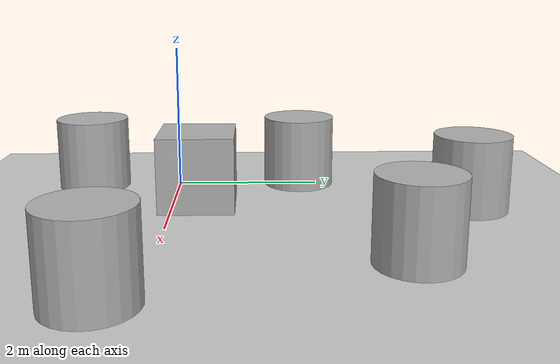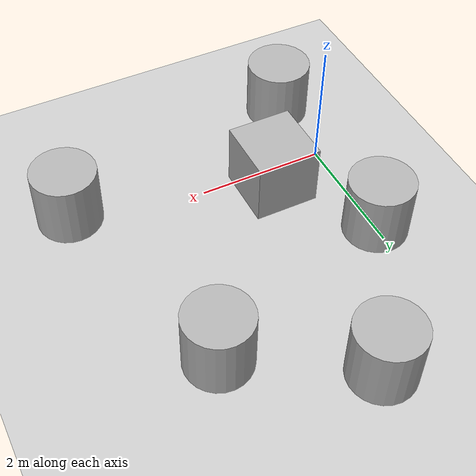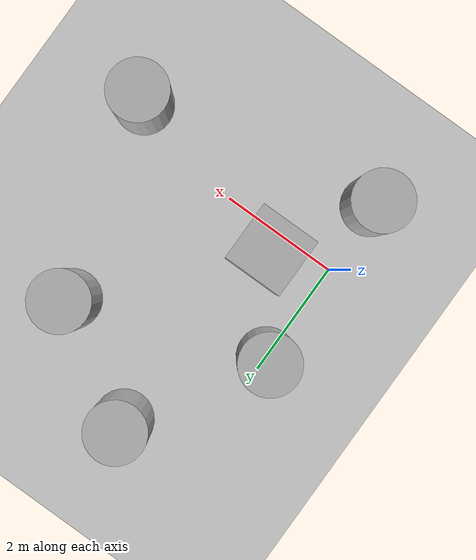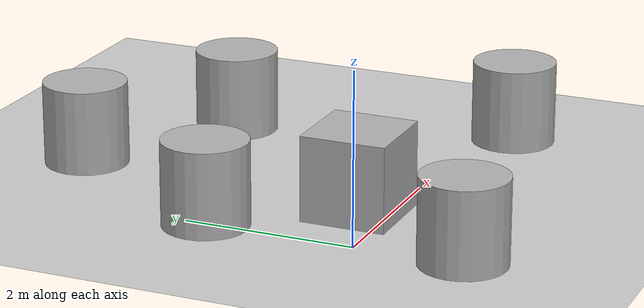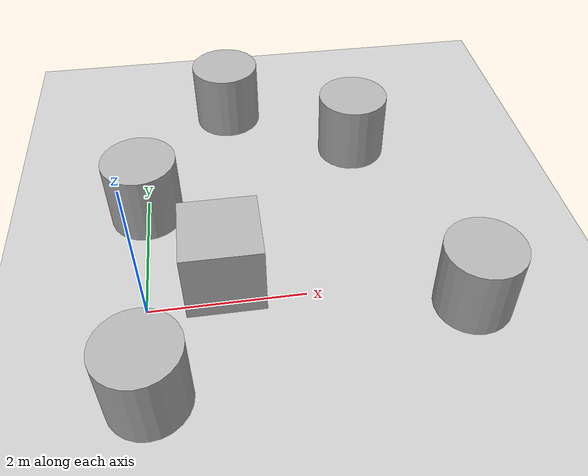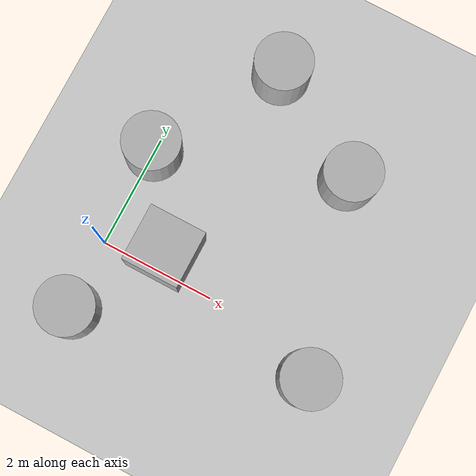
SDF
<sdf version='1.10'>
  <world name='empty'>
    <physics name='1ms' type='ignored'>
      <max_step_size>0.001</max_step_size>
      <real_time_factor>1</real_time_factor>
      <real_time_update_rate>1000</real_time_update_rate>
    </physics>
    <plugin name='gz::sim::systems::Physics' filename='gz-sim-physics-system'/>
    <plugin name='gz::sim::systems::UserCommands' filename='gz-sim-user-commands-system'/>
    <plugin name='gz::sim::systems::SceneBroadcaster' filename='gz-sim-scene-broadcaster-system'/>
    <plugin name='gz::sim::systems::Sensors' filename='gz-sim-sensors-system'>
      <render_engine>ogre2</render_engine>
    </plugin>
    <plugin name='gz::sim::systems::Contact' filename='gz-sim-contact-system'/>
    <gravity>0 0 -9.8000000000000007</gravity>
    <magnetic_field>5.5644999999999998e-06 2.2875799999999999e-05 -4.2388400000000002e-05</magnetic_field>
    <atmosphere type='adiabatic'/>
    <scene>
      <ambient>0.400000006 0.400000006 0.400000006 1</ambient>
      <background>0.699999988 0.699999988 0.699999988 1</background>
      <shadows>true</shadows>
    </scene>
    <model name='ground_plane'>
      <static>true</static>
      <link name='link'>
        <collision name='collision'>
          <geometry>
            <plane>
              <normal>0 0 1</normal>
              <size>100 100</size>
            </plane>
          </geometry>
          <surface>
            <friction>
              <ode/>
            </friction>
            <bounce/>
            <contact/>
          </surface>
        </collision>
        <visual name='visual'>
          <geometry>
            <plane>
              <normal>0 0 1</normal>
              <size>100 100</size>
            </plane>
          </geometry>
          <material>
            <ambient>0.800000012 0.800000012 0.800000012 1</ambient>
            <diffuse>0.800000012 0.800000012 0.800000012 1</diffuse>
            <specular>0.800000012 0.800000012 0.800000012 1</specular>
          </material>
        </visual>
        <pose>0 0 0 0 0 0</pose>
        <inertial>
          <pose>0 0 0 0 0 0</pose>
          <mass>1</mass>
          <inertia>
            <ixx>1</ixx>
            <ixy>0</ixy>
            <ixz>0</ixz>
            <iyy>1</iyy>
            <iyz>0</iyz>
            <izz>1</izz>
          </inertia>
        </inertial>
        <enable_wind>false</enable_wind>
      </link>
      <pose>0 0 0 0 0 0</pose>
      <self_collide>false</self_collide>
    </model>

    <model name='box'>
      <pose>0.98854407567823088 0.34213296549585959 0.49999999990199806 6.2287739151293738e-22 9.3279666454713669e-22 -3.6315533669320137e-22</pose>
      <link name='box_link'>
        <inertial>
          <inertia>
            <ixx>0.16666</ixx>
            <ixy>0</ixy>
            <ixz>0</ixz>
            <iyy>0.16666</iyy>
            <iyz>0</iyz>
            <izz>0.16666</izz>
          </inertia>
          <mass>1</mass>
          <pose>0 0 0 0 0 0</pose>
        </inertial>
        <collision name='box_collision'>
          <geometry>
            <box>
              <size>1 1 1</size>
            </box>
          </geometry>
          <surface>
            <friction>
              <ode/>
            </friction>
            <bounce/>
            <contact/>
          </surface>
        </collision>
        <visual name='box_visual'>
          <geometry>
            <box>
              <size>1 1 1</size>
            </box>
          </geometry>
          <material>
            <ambient>0.300000012 0.300000012 0.300000012 1</ambient>
            <diffuse>0.699999988 0.699999988 0.699999988 1</diffuse>
            <specular>1 1 1 1</specular>
          </material>
        </visual>
        <pose>0 0 0 0 0 0</pose>
        <enable_wind>false</enable_wind>
      </link>
      <static>false</static>
      <self_collide>false</self_collide>
    </model>
    <model name='cylinder'>
      <pose>0.054676869568582198 -1.2386291168490104 0.49999942638036005 -5.9686094182813101e-20 -1.1254017484253932e-19 -1.6788078917542529e-20</pose>
      <link name='cylinder_link'>
        <inertial>
          <inertia>
            <ixx>0.14580000000000001</ixx>
            <ixy>0</ixy>
            <ixz>0</ixz>
            <iyy>0.14580000000000001</iyy>
            <iyz>0</iyz>
            <izz>0.125</izz>
          </inertia>
          <mass>1</mass>
          <pose>0 0 0 0 0 0</pose>
        </inertial>
        <collision name='cylinder_collision'>
          <geometry>
            <cylinder>
              <radius>0.5</radius>
              <length>1</length>
            </cylinder>
          </geometry>
          <surface>
            <friction>
              <ode/>
            </friction>
            <bounce/>
            <contact/>
          </surface>
        </collision>
        <visual name='cylinder_visual'>
          <geometry>
            <cylinder>
              <radius>0.5</radius>
              <length>1</length>
            </cylinder>
          </geometry>
          <material>
            <ambient>0.300000012 0.300000012 0.300000012 1</ambient>
            <diffuse>0.699999988 0.699999988 0.699999988 1</diffuse>
            <specular>1 1 1 1</specular>
          </material>
        </visual>
        <pose>0 0 0 0 0 0</pose>
        <enable_wind>false</enable_wind>
      </link>
      <static>false</static>
      <self_collide>false</self_collide>
    </model>
    <model name='cylinder_0'>
      <pose>-0.0046564316738768596 1.751285454854552 0.49999942638036005 -6.6886105173529875e-20 1.387552047793515e-19 5.0310222786206491e-21</pose>
      <link name='cylinder_link'>
        <inertial>
          <inertia>
            <ixx>0.14580000000000001</ixx>
            <ixy>0</ixy>
            <ixz>0</ixz>
            <iyy>0.14580000000000001</iyy>
            <iyz>0</iyz>
            <izz>0.125</izz>
          </inertia>
          <mass>1</mass>
          <pose>0 0 0 0 0 0</pose>
        </inertial>
        <collision name='cylinder_collision'>
          <geometry>
            <cylinder>
              <radius>0.5</radius>
              <length>1</length>
            </cylinder>
          </geometry>
          <surface>
            <friction>
              <ode/>
            </friction>
            <bounce/>
            <contact/>
          </surface>
        </collision>
        <visual name='cylinder_visual'>
          <geometry>
            <cylinder>
              <radius>0.5</radius>
              <length>1</length>
            </cylinder>
          </geometry>
          <material>
            <ambient>0.300000012 0.300000012 0.300000012 1</ambient>
            <diffuse>0.699999988 0.699999988 0.699999988 1</diffuse>
            <specular>1 1 1 1</specular>
          </material>
        </visual>
        <pose>0 0 0 0 0 0</pose>
        <enable_wind>false</enable_wind>
      </link>
      <static>false</static>
      <self_collide>false</self_collide>
    </model>
    <model name='cylinder_1'>
      <pose>3.1229892471548339 2.8348861538286751 0.49999942638036005 1.8764463170520184e-19 9.3939943286810073e-20 2.9214940788912762e-21</pose>
      <link name='cylinder_link'>
        <inertial>
          <inertia>
            <ixx>0.14580000000000001</ixx>
            <ixy>0</ixy>
            <ixz>0</ixz>
            <iyy>0.14580000000000001</iyy>
            <iyz>0</iyz>
            <izz>0.125</izz>
          </inertia>
          <mass>1</mass>
          <pose>0 0 0 0 0 0</pose>
        </inertial>
        <collision name='cylinder_collision'>
          <geometry>
            <cylinder>
              <radius>0.5</radius>
              <length>1</length>
            </cylinder>
          </geometry>
          <surface>
            <friction>
              <ode/>
            </friction>
            <bounce/>
            <contact/>
          </surface>
        </collision>
        <visual name='cylinder_visual'>
          <geometry>
            <cylinder>
              <radius>0.5</radius>
              <length>1</length>
            </cylinder>
          </geometry>
          <material>
            <ambient>0.300000012 0.300000012 0.300000012 1</ambient>
            <diffuse>0.699999988 0.699999988 0.699999988 1</diffuse>
            <specular>1 1 1 1</specular>
          </material>
        </visual>
        <pose>0 0 0 0 0 0</pose>
        <enable_wind>false</enable_wind>
      </link>
      <static>false</static>
      <self_collide>false</self_collide>
    </model>
    <model name='cylinder_2'>
      <pose>4.0267257275323143 -0.42785467402516913 0.49999942638036005 2.3434124506569007e-19 1.3004345832429802e-19 4.3205843500581221e-21</pose>
      <link name='cylinder_link'>
        <inertial>
          <inertia>
            <ixx>0.14580000000000001</ixx>
            <ixy>0</ixy>
            <ixz>0</ixz>
            <iyy>0.14580000000000001</iyy>
            <iyz>0</iyz>
            <izz>0.125</izz>
          </inertia>
          <mass>1</mass>
          <pose>0 0 0 0 0 0</pose>
        </inertial>
        <collision name='cylinder_collision'>
          <geometry>
            <cylinder>
              <radius>0.5</radius>
              <length>1</length>
            </cylinder>
          </geometry>
          <surface>
            <friction>
              <ode/>
            </friction>
            <bounce/>
            <contact/>
          </surface>
        </collision>
        <visual name='cylinder_visual'>
          <geometry>
            <cylinder>
              <radius>0.5</radius>
              <length>1</length>
            </cylinder>
          </geometry>
          <material>
            <ambient>0.300000012 0.300000012 0.300000012 1</ambient>
            <diffuse>0.699999988 0.699999988 0.699999988 1</diffuse>
            <specular>1 1 1 1</specular>
          </material>
        </visual>
        <pose>0 0 0 0 0 0</pose>
        <enable_wind>false</enable_wind>
      </link>
      <static>false</static>
      <self_collide>false</self_collide>
    </model>
    <model name='cylinder_3'>
      <pose>1.285588105518789 3.9344804807620184 0.49999942638036005 4.4536876458708996e-20 3.662855272364429e-19 5.6463465015387112e-22</pose>
      <link name='cylinder_link'>
        <inertial>
          <inertia>
            <ixx>0.14580000000000001</ixx>
            <ixy>0</ixy>
            <ixz>0</ixz>
            <iyy>0.14580000000000001</iyy>
            <iyz>0</iyz>
            <izz>0.125</izz>
          </inertia>
          <mass>1</mass>
          <pose>0 0 0 0 0 0</pose>
        </inertial>
        <collision name='cylinder_collision'>
          <geometry>
            <cylinder>
              <radius>0.5</radius>
              <length>1</length>
            </cylinder>
          </geometry>
          <surface>
            <friction>
              <ode/>
            </friction>
            <bounce/>
            <contact/>
          </surface>
        </collision>
        <visual name='cylinder_visual'>
          <geometry>
            <cylinder>
              <radius>0.5</radius>
              <length>1</length>
            </cylinder>
          </geometry>
          <material>
            <ambient>0.300000012 0.300000012 0.300000012 1</ambient>
            <diffuse>0.699999988 0.699999988 0.699999988 1</diffuse>
            <specular>1 1 1 1</specular>
          </material>
        </visual>
        <pose>0 0 0 0 0 0</pose>
        <enable_wind>false</enable_wind>
      </link>
      <static>false</static>
      <self_collide>false</self_collide>
    </model>
    <light name='sun' type='directional'>
      <pose>0 0 10 0 0 0</pose>
      <cast_shadows>true</cast_shadows>
      <intensity>1</intensity>
      <direction>-0.5 0.10000000000000001 -0.90000000000000002</direction>
      <diffuse>0.800000012 0.800000012 0.800000012 1</diffuse>
      <specular>0.200000003 0.200000003 0.200000003 1</specular>
      <attenuation>
        <range>1000</range>
        <linear>0.01</linear>
        <constant>0.90000000000000002</constant>
        <quadratic>0.001</quadratic>
      </attenuation>
      <spot>
        <inner_angle>0</inner_angle>
        <outer_angle>0</outer_angle>
        <falloff>0</falloff>
      </spot>
    </light>
  </world>
</sdf>
